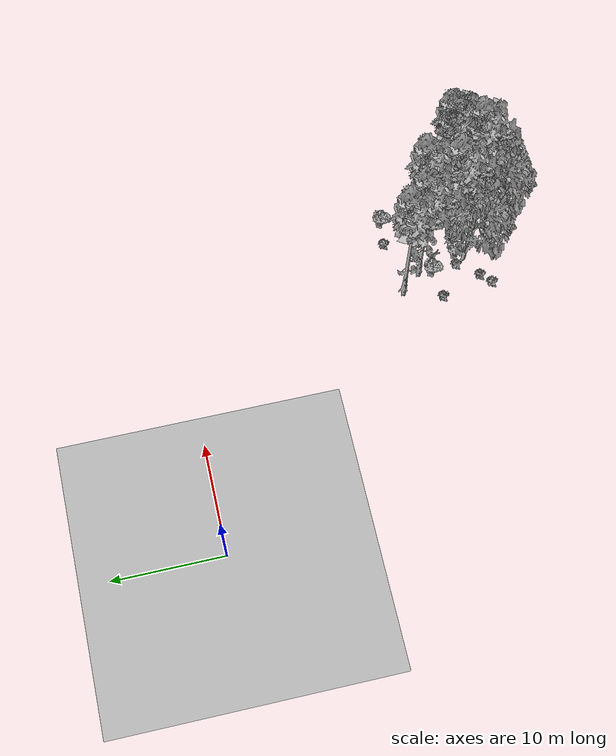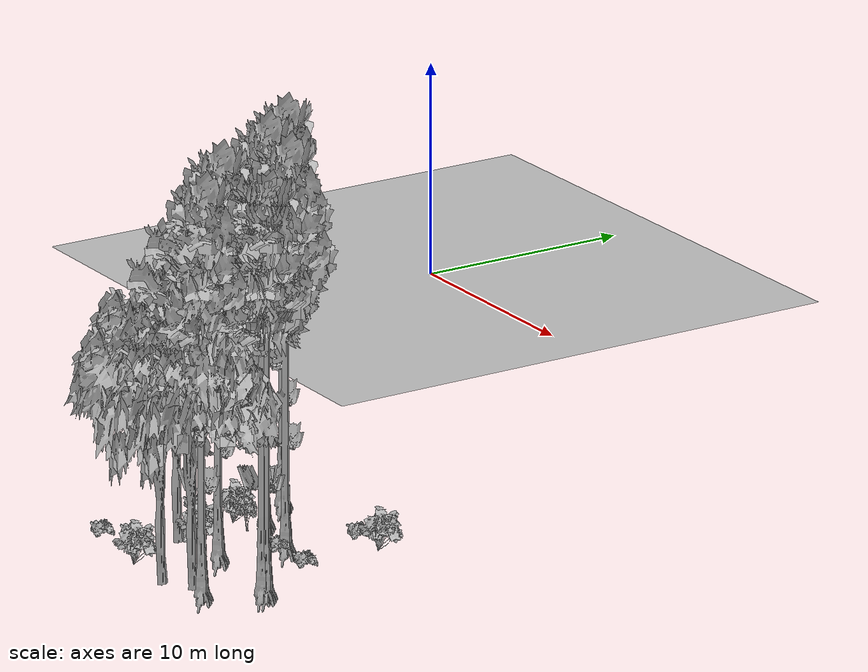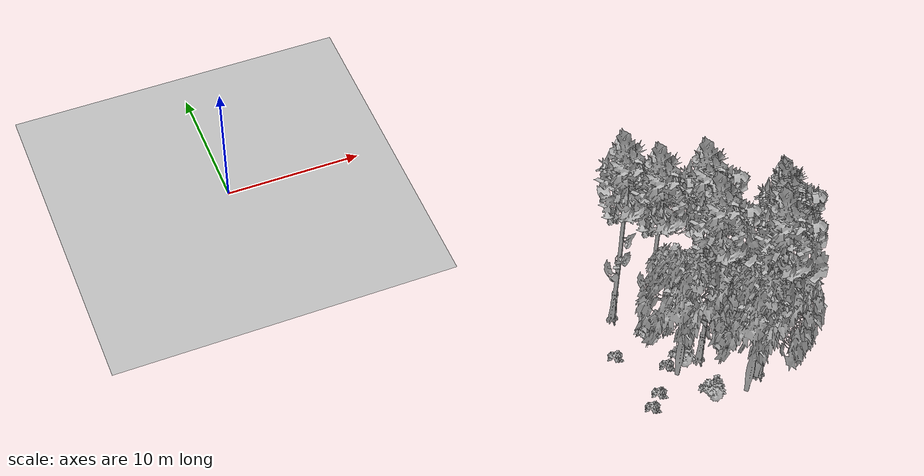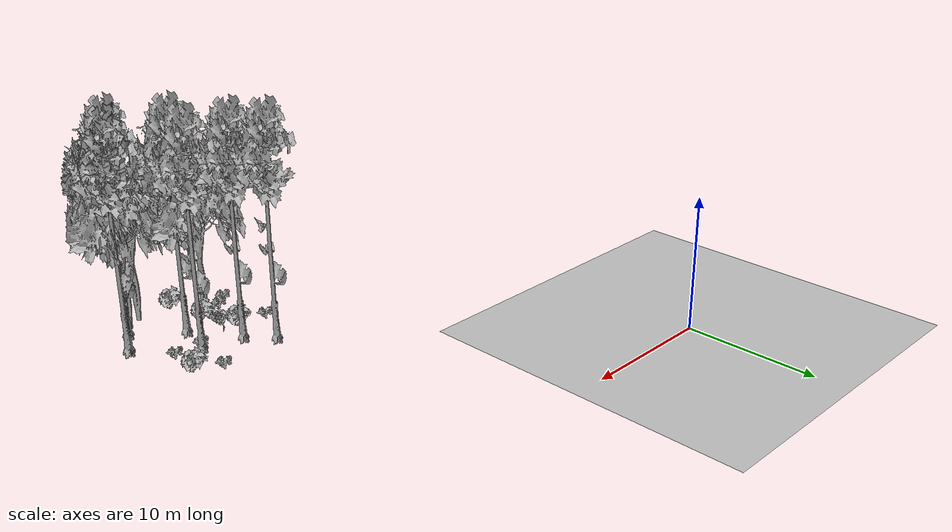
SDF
<sdf version="1.7">
 <world name="default">
  <model name="ground_plane">
   <static>1</static>
   <link name="link">
    <collision name="collision">
     <pose>-50 0 0 0 -0 0</pose>
     <geometry><plane><normal>0 0 1</normal><size>80 80</size></plane></geometry>
     <surface><contact><ode><min_depth>0.01</min_depth><max_vel>0</max_vel></ode></contact></surface>
    </collision>
    <visual name="grass">
     <cast_shadows>0</cast_shadows>
     <geometry>
      <mesh>
       <scale>0.46714285714285714 0.46714285714285714 0.1</scale>
       <uri>file://grass_plane/meshes/grass_plane.dae</uri>
      </mesh>
     </geometry>
    </visual>
   </link>
  </model>
  <model name="Tree 82">
   <static>1</static>
   <pose>27.394558717450465 -28.96196237715806 0 1.57079 -0 0</pose>
   <link name="link">
    <collision name="collision">
     <geometry><mesh><scale>3.5 5 3.5</scale><uri>model://tree_2/meshes/tree_2.obj</uri></mesh></geometry>
    </collision>
    <visual name="visual">
     <geometry><mesh><scale>3.5 5 3.5</scale><uri>model://tree_2/meshes/tree_2.obj</uri></mesh></geometry>
    </visual>
   </link>
  </model>
  <model name="Tree 167">
   <static>1</static>
   <pose>20.822931557296982 -20.655338640956316 0 1.57079 -0 0</pose>
   <link name="link">
    <collision name="collision">
     <geometry><mesh><scale>3.5 5 3.5</scale><uri>model://tree_9/meshes/tree_9.obj</uri></mesh></geometry>
    </collision>
    <visual name="visual">
     <geometry><mesh><scale>3.5 5 3.5</scale><uri>model://tree_9/meshes/tree_9.obj</uri></mesh></geometry>
    </visual>
   </link>
  </model>
  <model name="Tree 170">
   <static>1</static>
   <pose>27.827539826761495 -28.725986882140482 0 1.57079 -0 0</pose>
   <link name="link">
    <collision name="collision">
     <geometry><mesh><scale>3.5 5 3.5</scale><uri>model://tree_9/meshes/tree_9.obj</uri></mesh></geometry>
    </collision>
    <visual name="visual">
     <geometry><mesh><scale>3.5 5 3.5</scale><uri>model://tree_9/meshes/tree_9.obj</uri></mesh></geometry>
    </visual>
   </link>
  </model>
  <model name="Tree 178">
   <static>1</static>
   <pose>29.103865078282922 -26.463607239199696 0 1.57079 -0 0</pose>
   <link name="link">
    <collision name="collision">
     <geometry><mesh><scale>3.5 5 3.5</scale><uri>model://tree_9/meshes/tree_9.obj</uri></mesh></geometry>
    </collision>
    <visual name="visual">
     <geometry><mesh><scale>3.5 5 3.5</scale><uri>model://tree_9/meshes/tree_9.obj</uri></mesh></geometry>
    </visual>
   </link>
  </model>
  <model name="Tree 222">
   <static>1</static>
   <pose>25.31119674059292 -23.231747249522712 0 1.57079 -0 0</pose>
   <link name="link">
    <collision name="collision">
     <geometry><mesh><scale>3.5 5 3.5</scale><uri>model://tree_9/meshes/tree_9.obj</uri></mesh></geometry>
    </collision>
    <visual name="visual">
     <geometry><mesh><scale>3.5 5 3.5</scale><uri>model://tree_9/meshes/tree_9.obj</uri></mesh></geometry>
    </visual>
   </link>
  </model>
  <model name="Tree 303">
   <static>1</static>
   <pose>22.553576264994625 -26.785676947142704 0 1.57079 -0 0</pose>
   <link name="link">
    <collision name="collision">
     <geometry><mesh><scale>3.5 5 3.5</scale><uri>model://tree_2/meshes/tree_2.obj</uri></mesh></geometry>
    </collision>
    <visual name="visual">
     <geometry><mesh><scale>3.5 5 3.5</scale><uri>model://tree_2/meshes/tree_2.obj</uri></mesh></geometry>
    </visual>
   </link>
  </model>
  <model name="Tree 329">
   <static>1</static>
   <pose>22.40342830390965 -22.469457279202434 0 1.57079 -0 0</pose>
   <link name="link">
    <collision name="collision">
     <geometry><mesh><scale>3.5 5 3.5</scale><uri>model://tree_9/meshes/tree_9.obj</uri></mesh></geometry>
    </collision>
    <visual name="visual">
     <geometry><mesh><scale>3.5 5 3.5</scale><uri>model://tree_9/meshes/tree_9.obj</uri></mesh></geometry>
    </visual>
   </link>
  </model>
  <model name="Tree 446">
   <static>1</static>
   <pose>29.02125532206533 -26.619867468988367 0 1.57079 -0 0</pose>
   <link name="link">
    <collision name="collision">
     <geometry><mesh><scale>3.5 5 3.5</scale><uri>model://tree_9/meshes/tree_9.obj</uri></mesh></geometry>
    </collision>
    <visual name="visual">
     <geometry><mesh><scale>3.5 5 3.5</scale><uri>model://tree_9/meshes/tree_9.obj</uri></mesh></geometry>
    </visual>
   </link>
  </model>
  <model name="Tree 506">
   <static>1</static>
   <pose>24.691697579185934 -26.07234123501181 0 1.57079 -0 0</pose>
   <link name="link">
    <collision name="collision">
     <geometry><mesh><scale>3.5 5 3.5</scale><uri>model://tree_9/meshes/tree_9.obj</uri></mesh></geometry>
    </collision>
    <visual name="visual">
     <geometry><mesh><scale>3.5 5 3.5</scale><uri>model://tree_9/meshes/tree_9.obj</uri></mesh></geometry>
    </visual>
   </link>
  </model>
  <model name="Tree 607">
   <static>1</static>
   <pose>26.231443318056776 -29.730487319159764 0 1.57079 -0 0</pose>
   <link name="link">
    <collision name="collision">
     <geometry><mesh><scale>3.5 5 3.5</scale><uri>model://tree_2/meshes/tree_2.obj</uri></mesh></geometry>
    </collision>
    <visual name="visual">
     <geometry><mesh><scale>3.5 5 3.5</scale><uri>model://tree_2/meshes/tree_2.obj</uri></mesh></geometry>
    </visual>
   </link>
  </model>
  <model name="Bush 70">
   <static>1</static>
   <pose>21.994007398162232 -23.756934353402734 0 1.57079 -0 0</pose>
   <link name="link">
    <collision name="collision">
     <geometry><mesh><scale>2 2 2</scale><uri>model://bush_1/meshes/bush_1.obj</uri></mesh></geometry>
     <surface><contact><collide_without_contact>false</collide_without_contact></contact></surface>
    </collision>
    <visual name="visual">
     <geometry><mesh><scale>2 2 2</scale><uri>model://bush_1/meshes/bush_1.obj</uri></mesh></geometry>
    </visual>
   </link>
  </model>
  <model name="Bush 73">
   <static>1</static>
   <pose>25.702421026541785 -20.01972777907751 0 1.57079 -0 0</pose>
   <link name="link">
    <collision name="collision">
     <geometry><mesh><scale>2 2 2</scale><uri>model://bush_2/meshes/bush_2.obj</uri></mesh></geometry>
     <surface><contact><collide_without_contact>false</collide_without_contact></contact></surface>
    </collision>
    <visual name="visual">
     <geometry><mesh><scale>2 2 2</scale><uri>model://bush_2/meshes/bush_2.obj</uri></mesh></geometry>
    </visual>
   </link>
  </model>
  <model name="Bush 121">
   <static>1</static>
   <pose>20.727487417864708 -27.89665221881262 0 1.57079 -0 0</pose>
   <link name="link">
    <collision name="collision">
     <geometry><mesh><scale>2 2 2</scale><uri>model://bush_2/meshes/bush_2.obj</uri></mesh></geometry>
     <surface><contact><collide_without_contact>false</collide_without_contact></contact></surface>
    </collision>
    <visual name="visual">
     <geometry><mesh><scale>2 2 2</scale><uri>model://bush_2/meshes/bush_2.obj</uri></mesh></geometry>
    </visual>
   </link>
  </model>
  <model name="Bush 263">
   <static>1</static>
   <pose>19.784066428944776 -28.778865009696535 0 1.57079 -0 0</pose>
   <link name="link">
    <collision name="collision">
     <geometry><mesh><scale>2 2 2</scale><uri>model://bush_2/meshes/bush_2.obj</uri></mesh></geometry>
     <surface><contact><collide_without_contact>false</collide_without_contact></contact></surface>
    </collision>
    <visual name="visual">
     <geometry><mesh><scale>2 2 2</scale><uri>model://bush_2/meshes/bush_2.obj</uri></mesh></geometry>
    </visual>
   </link>
  </model>
  <model name="Bush 281">
   <static>1</static>
   <pose>27.262190947979107 -23.5654847360479 0 1.57079 -0 0</pose>
   <link name="link">
    <collision name="collision">
     <geometry><mesh><scale>2 2 2</scale><uri>model://bush_2/meshes/bush_2.obj</uri></mesh></geometry>
     <surface><contact><collide_without_contact>false</collide_without_contact></contact></surface>
    </collision>
    <visual name="visual">
     <geometry><mesh><scale>2 2 2</scale><uri>model://bush_2/meshes/bush_2.obj</uri></mesh></geometry>
    </visual>
   </link>
  </model>
  <model name="Bush 356">
   <static>1</static>
   <pose>23.144479833759803 -23.76523474708163 0 1.57079 -0 0</pose>
   <link name="link">
    <collision name="collision">
     <geometry><mesh><scale>2 2 2</scale><uri>model://bush_5/meshes/bush_5.obj</uri></mesh></geometry>
     <surface><contact><collide_without_contact>false</collide_without_contact></contact></surface>
    </collision>
    <visual name="visual">
     <geometry><mesh><scale>2 2 2</scale><uri>model://bush_5/meshes/bush_5.obj</uri></mesh></geometry>
    </visual>
   </link>
  </model>
  <model name="Bush 403">
   <static>1</static>
   <pose>19.34982561888625 -24.059417715062796 0 1.57079 -0 0</pose>
   <link name="link">
    <collision name="collision">
     <geometry><mesh><scale>2 2 2</scale><uri>model://bush_2/meshes/bush_2.obj</uri></mesh></geometry>
     <surface><contact><collide_without_contact>false</collide_without_contact></contact></surface>
    </collision>
    <visual name="visual">
     <geometry><mesh><scale>2 2 2</scale><uri>model://bush_2/meshes/bush_2.obj</uri></mesh></geometry>
    </visual>
   </link>
  </model>
  <model name="Bush 436">
   <static>1</static>
   <pose>23.28797238081078 -26.297733659906886 0 1.57079 -0 0</pose>
   <link name="link">
    <collision name="collision">
     <geometry><mesh><scale>2 2 2</scale><uri>model://bush_1/meshes/bush_1.obj</uri></mesh></geometry>
     <surface><contact><collide_without_contact>false</collide_without_contact></contact></surface>
    </collision>
    <visual name="visual">
     <geometry><mesh><scale>2 2 2</scale><uri>model://bush_1/meshes/bush_1.obj</uri></mesh></geometry>
    </visual>
   </link>
  </model>
  <model name="Bush 477">
   <static>1</static>
   <pose>23.836557064078065 -29.579627608367865 0 1.57079 -0 0</pose>
   <link name="link">
    <collision name="collision">
     <geometry><mesh><scale>2 2 2</scale><uri>model://bush_1/meshes/bush_1.obj</uri></mesh></geometry>
     <surface><contact><collide_without_contact>false</collide_without_contact></contact></surface>
    </collision>
    <visual name="visual">
     <geometry><mesh><scale>2 2 2</scale><uri>model://bush_1/meshes/bush_1.obj</uri></mesh></geometry>
    </visual>
   </link>
  </model>
  <model name="Bush 491">
   <static>1</static>
   <pose>22.246009107402685 -26.042283669646437 0 1.57079 -0 0</pose>
   <link name="link">
    <collision name="collision">
     <geometry><mesh><scale>2 2 2</scale><uri>model://bush_2/meshes/bush_2.obj</uri></mesh></geometry>
     <surface><contact><collide_without_contact>false</collide_without_contact></contact></surface>
    </collision>
    <visual name="visual">
     <geometry><mesh><scale>2 2 2</scale><uri>model://bush_2/meshes/bush_2.obj</uri></mesh></geometry>
    </visual>
   </link>
  </model>
  <model name="Bush 496">
   <static>1</static>
   <pose>27.90548740187468 -20.3881131629932 0 1.57079 -0 0</pose>
   <link name="link">
    <collision name="collision">
     <geometry><mesh><scale>2 2 2</scale><uri>model://bush_1/meshes/bush_1.obj</uri></mesh></geometry>
     <surface><contact><collide_without_contact>false</collide_without_contact></contact></surface>
    </collision>
    <visual name="visual">
     <geometry><mesh><scale>2 2 2</scale><uri>model://bush_1/meshes/bush_1.obj</uri></mesh></geometry>
    </visual>
   </link>
  </model>
  <model name="Bush 582">
   <static>1</static>
   <pose>25.160936228856073 -23.575396518942107 0 1.57079 -0 0</pose>
   <link name="link">
    <collision name="collision">
     <geometry><mesh><scale>2 2 2</scale><uri>model://bush_2/meshes/bush_2.obj</uri></mesh></geometry>
     <surface><contact><collide_without_contact>false</collide_without_contact></contact></surface>
    </collision>
    <visual name="visual">
     <geometry><mesh><scale>2 2 2</scale><uri>model://bush_2/meshes/bush_2.obj</uri></mesh></geometry>
    </visual>
   </link>
  </model>
 </world>
</sdf>
